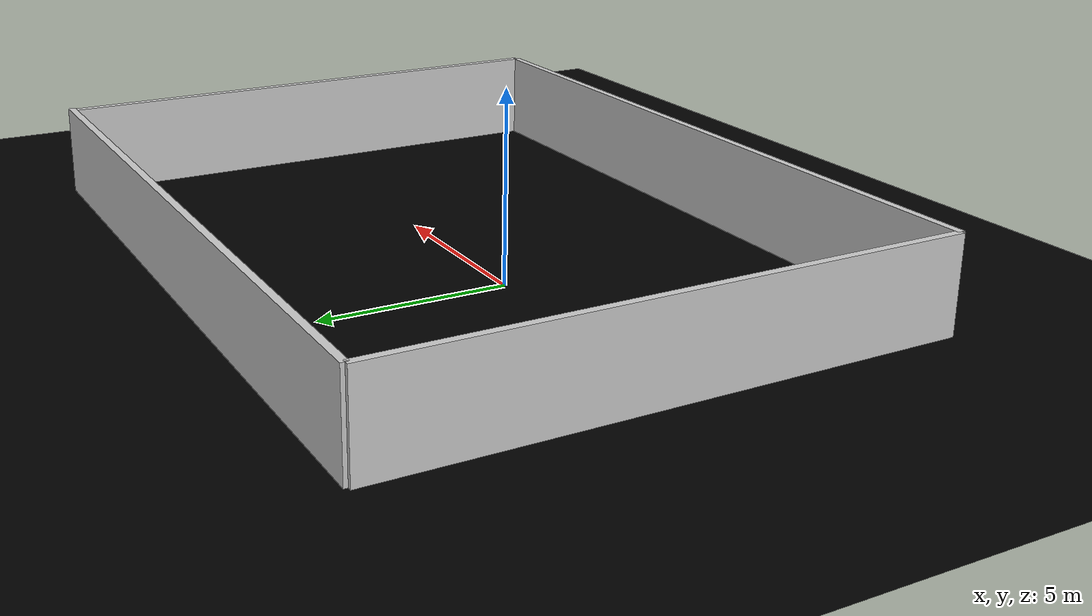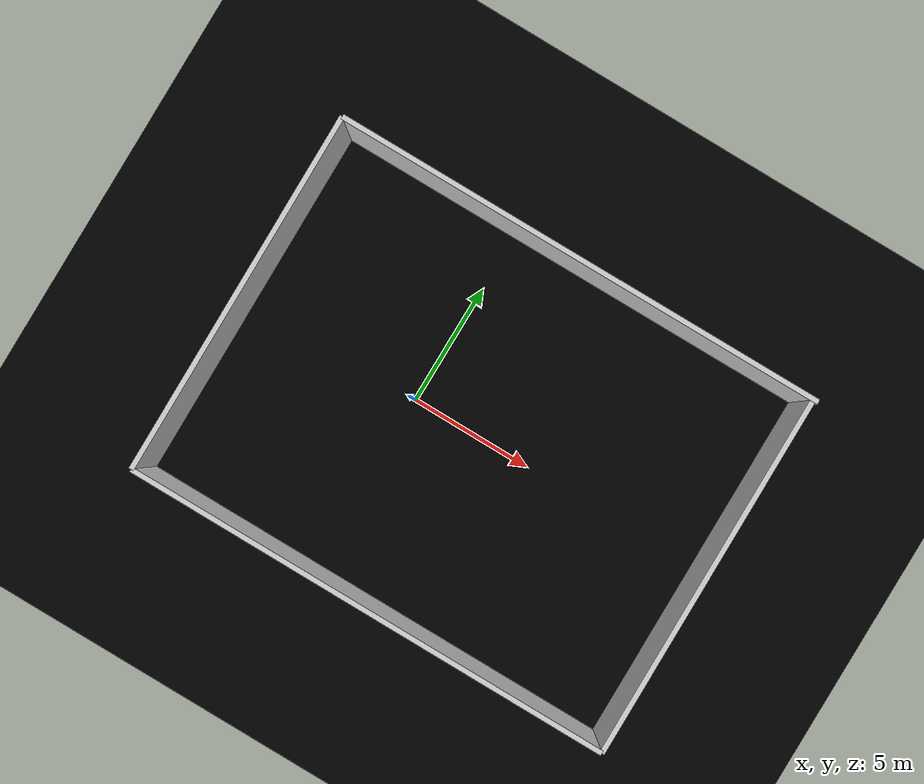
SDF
<?xml version="1.0" ?>
<sdf version="1.8">
  <world name="custom_world">
    <plugin filename="ignition-gazebo-physics-system" name="ignition::gazebo::systems::Physics"/>
    <plugin filename="ignition-gazebo-user-commands-system" name="ignition::gazebo::systems::UserCommands"/>
    <plugin filename="ignition-gazebo-scene-broadcaster-system" name="ignition::gazebo::systems::SceneBroadcaster"/>

    <light type="directional" name="sun"><pose>0 0 10 0 0 0</pose><cast_shadows>true</cast_shadows></light>

    <model name="ground_plane">
      <static>true</static>
      <link name="link">
        <collision name="collision"><geometry><plane><normal>0 0 1</normal><size>100 100</size></plane></geometry></collision>
        <visual name="visual"><geometry><plane><normal>0 0 1</normal><size>100 100</size></plane></geometry><material><ambient>0 0 0 1</ambient></material></visual>
      </link>
    </model>

    <model name="generated_walls">
      <static>true</static>

    <link name='wall_0'>
      <pose>2.6250 7.4250 1.2500 0 0 -3.1391</pose>
      <collision name='collision'><geometry><box><size>20.0501 0.2 2.5</size></box></geometry></collision>
      <visual name='visual'>
        <geometry><box><size>20.0501 0.2 2.5</size></box></geometry>
        <material><ambient>0.8 0.8 0.8 1</ambient><diffuse>0.8 0.8 0.8 1</diffuse></material>
      </visual>
    </link>
    <link name='wall_1'>
      <pose>-7.3750 -0.0250 1.2500 0 0 -1.5674</pose>
      <collision name='collision'><geometry><box><size>14.8501 0.2 2.5</size></box></geometry></collision>
      <visual name='visual'>
        <geometry><box><size>14.8501 0.2 2.5</size></box></geometry>
        <material><ambient>0.8 0.8 0.8 1</ambient><diffuse>0.8 0.8 0.8 1</diffuse></material>
      </visual>
    </link>
    <link name='wall_2'>
      <pose>2.5750 -7.4500 1.2500 0 0 0.0000</pose>
      <collision name='collision'><geometry><box><size>19.8500 0.2 2.5</size></box></geometry></collision>
      <visual name='visual'>
        <geometry><box><size>19.8500 0.2 2.5</size></box></geometry>
        <material><ambient>0.8 0.8 0.8 1</ambient><diffuse>0.8 0.8 0.8 1</diffuse></material>
      </visual>
    </link>
    <link name='wall_3'>
      <pose>12.4750 -0.0500 1.2500 0 0 1.5742</pose>
      <collision name='collision'><geometry><box><size>14.8001 0.2 2.5</size></box></geometry></collision>
      <visual name='visual'>
        <geometry><box><size>14.8001 0.2 2.5</size></box></geometry>
        <material><ambient>0.8 0.8 0.8 1</ambient><diffuse>0.8 0.8 0.8 1</diffuse></material>
      </visual>
    </link>
    </model>

  </world>
</sdf>
